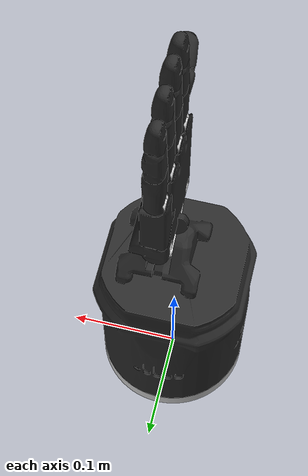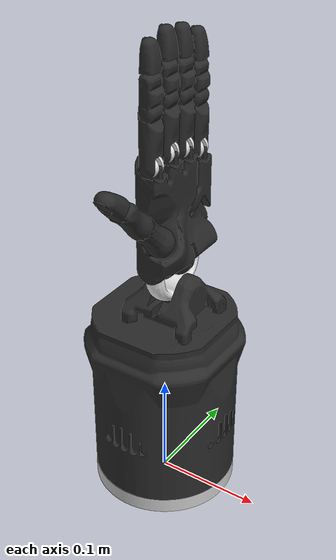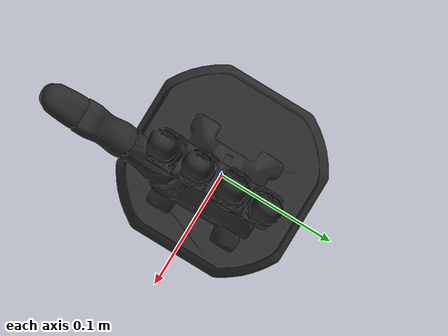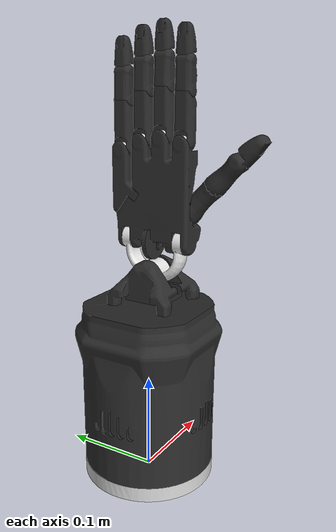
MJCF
<?xml version="1.0" ?>
<mujoco model="left_shadow_hand">
	<compiler meshdir="left_shadow_hand/meshes" texturedir="left_shadow_hand/textures" angle="radian" autolimits="true" balanceinertia="true" boundmass="0.000001" boundinertia="0.000001"/>
	<default>
		<default class="visual">
			<geom contype="0" conaffinity="0"/>
		</default>
		<default class="collision">
			<geom rgba="1.0 0.0 0.0 0.0"/>
		</default>
	</default>
	<asset>
		<mesh name="forearm_0" file="stl/forearm_0.stl" scale="1.0 1.0 1.0"/>
		<mesh name="forearm_1" file="stl/forearm_1.stl" scale="1.0 1.0 1.0"/>
		<mesh name="forearm_collision" file="stl/forearm_collision.stl" scale="1.0 1.0 1.0"/>
		<mesh name="wrist" file="stl/wrist.stl" scale="1.0 1.0 1.0"/>
		<mesh name="palm" file="stl/palm.stl" scale="1.0 1.0 1.0"/>
		<mesh name="f_knuckle" file="stl/f_knuckle.stl" scale="1.0 1.0 1.0"/>
		<mesh name="f_proximal" file="stl/f_proximal.stl" scale="1.0 1.0 1.0"/>
		<mesh name="f_middle" file="stl/f_middle.stl" scale="1.0 1.0 1.0"/>
		<mesh name="f_distal_pst" file="stl/f_distal_pst.stl" scale="1.0 1.0 1.0"/>
		<mesh name="lf_metacarpal" file="stl/lf_metacarpal.stl" scale="1.0 1.0 1.0"/>
		<mesh name="th_proximal" file="stl/th_proximal.stl" scale="1.0 1.0 1.0"/>
		<mesh name="th_middle" file="stl/th_middle.stl" scale="1.0 1.0 1.0"/>
		<mesh name="th_distal_pst" file="stl/th_distal_pst.stl" scale="1.0 1.0 1.0"/>
		<material name="gray" rgba="0.8084800243377686 0.8084800243377686 0.8084800243377686 1.0" emission="0.0" specular="0.0"/>
		<material name="black" rgba="0.16355000436306 0.16355000436306 0.16355000436306 1.0" emission="0.0" specular="0.5"/>
		<material name="metallic" rgba="0.8999999761581421 0.8999999761581421 0.8999999761581421 1.0" emission="0.0" specular="0.0"/>
	</asset>
	<worldbody>
		<body name="left_shadow_hand" pos="0.0 0.0 0.0" quat="1.0 0.0 0.0 0.0">
			<body name="lh_forearm" pos="0.0 0.0 0.0" quat="1.0 0.0 0.0 0.0">
				<geom name="Geom_0" type="mesh" pos="-0.0006274281768128276 2.5023158741532825e-05 0.006174841895699501" quat="0.006112334318459034 0.7070778608322144 -0.006098461803048849 0.707082986831665" mesh="forearm_0" material="gray" class="visual"/>
				<geom name="Geom_1" type="mesh" pos="0.0008932988857850432 4.971852831658907e-07 0.10642138868570328" quat="0.7048231363296509 0.014883364550769329 0.01477573812007904 0.709073007106781" mesh="forearm_1" material="black" class="visual"/>
				<geom name="Geom_2" type="mesh" pos="-2.3000312765475428e-08 -2.1648977721611118e-08 0.09274562448263168" quat="1.0 0.0 0.0 0.0" mesh="forearm_collision" class="collision"/>
				<geom name="Geom_3" type="box" pos="0.009999999776482582 0.0 0.1809999942779541" quat="0.38018807768821716 0.9249091744422913 0.0 0.0" size="0.03500000014901161 0.03500000014901161 0.03500000014901161" class="collision"/>
				<body name="lh_wrist" pos="0.009999999776482582 0.0 0.2130099982023239" quat="0.7071067690849304 0.0 0.0 0.7071067690849304">
					<inertial mass="0.10000000149011612" pos="0.0 0.0 0.028999999165534973" quat="0.5 0.5 0.5 0.5" diaginertia="6.399999983841553e-05 4.3799998820759356e-05 3.5000000934815034e-05"/>
					<geom name="Geom_4" type="mesh" pos="-0.002649368019774556 2.261926420032978e-05 0.016064314171671867" quat="0.4955274760723114 0.5043715834617615 0.5036556124687195 0.49637970328330994" mesh="wrist" material="metallic" class="visual"/>
					<geom name="Geom_5" type="cylinder" pos="0.0 0.0 0.0" quat="0.4999980032444 0.5 0.5 -0.5000020265579224" size="0.013500000350177288 0.014999999664723873 0.0" class="collision"/>
					<geom name="Geom_6" type="cylinder" pos="0.026000000536441803 0.0 0.03400000184774399" quat="0.7071067690849304 0.0 0.7071067690849304 0.0" size="0.010999999940395355 0.004999999888241291 0.0" class="collision"/>
					<geom name="Geom_7" type="cylinder" pos="-0.03099999949336052 0.0 0.03400000184774399" quat="0.7071067690849304 0.0 0.7071067690849304 0.0" size="0.010999999940395355 0.004999999888241291 0.0" class="collision"/>
					<geom name="Geom_8" type="box" pos="0.020999999716877937 0.0 0.010999999940395355" quat="-0.9238792657852173 0.0 0.3826841115951538 0.0" size="0.013500000350177288 0.008999999612569809 0.004999999888241291" class="collision"/>
					<geom name="Geom_9" type="box" pos="-0.026000000536441803 0.0 0.009999999776482582" quat="-0.9238792657852173 0.0 -0.3826841115951538 0.0" size="0.013500000350177288 0.008999999612569809 0.004999999888241291" class="collision"/>
					<joint name="lh_WRJ2" type="hinge" pos="0.0 0.0 0.0" range="-0.5235990285873413 0.17453299462795258" axis="0.0 -1.0 0.0"/>
					<body name="lh_palm" pos="0.0 0.0 0.03400000184774399" quat="1.0 0.0 0.0 0.0">
						<inertial mass="0.30000001192092896" pos="0.0 0.0 0.03500000014901161" quat="0.7071067690849304 0.0 0.0 0.7071067690849304" diaginertia="0.0005287000094540417 0.0003580999909900129 0.00019099999917671084"/>
						<geom name="Geom_10" type="mesh" pos="-0.005374445114284754 -0.0022442906629294157 0.0320129431784153" quat="0.6922619938850403 -0.10281900316476822 -0.04589544236660004 0.7128079533576965" mesh="palm" material="black" class="visual"/>
						<geom name="Geom_11" type="box" pos="-0.010999999940395355 0.008500000461935997 0.03799999877810478" quat="1.0 0.0 0.0 0.0" size="0.03099999949336052 0.0035000001080334187 0.04899999871850014" class="collision"/>
						<geom name="Geom_12" type="box" pos="0.0020000000949949026 -0.0035000001080334187 0.03799999877810478" quat="1.0 0.0 0.0 0.0" size="0.017999999225139618 0.008500000461935997 0.04899999871850014" class="collision"/>
						<geom name="Geom_13" type="box" pos="-0.028999999165534973 -0.0035000001080334187 0.0820000022649765" quat="1.0 0.0 0.0 0.0" size="0.013000000268220901 0.008500000461935997 0.004999999888241291" class="collision"/>
						<geom name="Geom_14" type="box" pos="-0.026499999687075615 -0.0010000000474974513 0.07000000029802322" quat="0.9872407913208008 0.0990544781088829 0.012446697801351547 -0.12405197322368622" size="0.013000000268220901 0.007000000216066837 0.008999999612569809" class="collision"/>
						<geom name="Geom_15" type="box" pos="-0.03150000050663948 -0.008500000461935997 0.0010000000474974513" quat="1.0 0.0 0.0 0.0" size="0.010499999858438969 0.013500000350177288 0.01119999960064888" class="collision"/>
						<geom name="Geom_16" type="box" pos="-0.012500000186264515 -0.014999999664723873 0.004000000189989805" quat="-0.9713379144668579 0.0 0.0 -0.23770296573638916" size="0.010999999940395355 0.0024999999441206455 0.014999999664723873" class="collision"/>
						<geom name="Geom_17" type="box" pos="-0.010999999940395355 0.0 0.08900000154972076" quat="1.0 0.0 0.0 0.0" size="0.008999999612569809 0.012000000104308128 0.0020000000949949026" class="collision"/>
						<geom name="Geom_18" type="box" pos="0.029999999329447746 0.0 0.008999999612569809" quat="1.0 0.0 0.0 0.0" size="0.009999999776482582 0.012000000104308128 0.019999999552965164" class="collision"/>
						<joint name="lh_WRJ1" type="hinge" pos="0.0 0.0 0.0" range="-0.6981319785118103 0.4886919856071472" axis="1.0 0.0 0.0"/>
						<body name="lh_mfknuckle" pos="-0.010999999940395355 0.0 0.0989999994635582" quat="1.0 0.0 0.0 0.0">
							<inertial mass="0.00800000037997961" pos="0.0 0.0 0.0" quat="0.5 0.5 -0.5 0.5" diaginertia="3.199999980552093e-07 2.6000000730164174e-07 2.6000000730164174e-07"/>
							<geom name="Geom_27" type="mesh" pos="-8.015944331418723e-06 0.0002838333311956376 0.00031411449890583754" quat="0.971768319606781 0.23584166169166565 0.0022045928053557873 -0.006343154236674309" mesh="f_knuckle" material="metallic" class="visual"/>
							<geom name="Geom_28" type="cylinder" pos="0.0 0.0 0.0" quat="0.7071067690849304 0.0 0.7071067690849304 0.0" size="0.008999999612569809 0.008999999612569809 0.0" class="collision"/>
							<joint name="lh_MFJ4" type="hinge" pos="0.0 0.0 0.0" range="-0.34906598925590515 0.34906598925590515" axis="0.0 1.0 0.0"/>
							<body name="lh_mfproximal" pos="0.0 0.0 0.0" quat="1.0 0.0 0.0 0.0">
								<inertial mass="0.029999999329447746" pos="0.0 0.0 0.02250000089406967" quat="0.7071067690849304 0.0 0.0 0.7071067690849304" diaginertia="9.999999747378752e-06 9.800000043469481e-06 1.7999999499807018e-06"/>
								<geom name="Geom_29" type="mesh" pos="1.2104673032808932e-06 9.761753062775824e-06 0.02288065291941166" quat="0.7071643471717834 -0.004207220859825611 0.0042030117474496365 0.7070241570472717" mesh="f_proximal" material="black" class="visual"/>
								<geom name="Geom_30" type="capsule" pos="0.0 0.0 0.02500000037252903" quat="1.0 0.0 0.0 0.0" size="0.008999999612569809 0.019999999552965164 0.0" class="collision"/>
								<joint name="lh_MFJ3" type="hinge" pos="0.0 0.0 0.0" range="-0.26179900765419006 1.5707999467849731" axis="1.0 0.0 0.0"/>
								<body name="lh_mfmiddle" pos="0.0 0.0 0.04500000178813934" quat="1.0 0.0 0.0 0.0">
									<inertial mass="0.017000000923871994" pos="0.0 0.0 0.012500000186264515" quat="0.7071067690849304 0.0 0.0 0.7071067690849304" diaginertia="2.7000000955013093e-06 2.6000000161729986e-06 8.700000080352766e-07"/>
									<geom name="Geom_31" type="mesh" pos="-2.7197406780032907e-06 -3.219283462385647e-05 0.011511409655213356" quat="0.7071067690849304 8.541106944903731e-05 -9.612595022190362e-05 0.7071067690849304" mesh="f_middle" material="black" class="visual"/>
									<geom name="Geom_32" type="capsule" pos="0.0 0.0 0.012500000186264515" quat="1.0 0.0 0.0 0.0" size="0.008999999612569809 0.012500000186264515 0.0" class="collision"/>
									<joint name="lh_MFJ2" type="hinge" pos="0.0 0.0 0.0" range="0.0 1.5707999467849731" axis="1.0 0.0 0.0"/>
									<body name="lh_mfdistal" pos="0.0 0.0 0.02500000037252903" quat="1.0 0.0 0.0 0.0">
										<inertial mass="0.013000000268220901" pos="0.0 0.0 0.013076899573206902" quat="0.7071067690849304 0.0 0.0 0.7071067690849304" diaginertia="1.2809199461116805e-06 1.1209200465600588e-06 5.300000225361146e-07"/>
										<geom name="Geom_33" type="mesh" pos="-2.3984350264072418e-05 0.0004207325691822916 0.01764647476375103" quat="0.703035831451416 -0.0009495581034570932 0.0009524950874038041 0.7111531496047974" mesh="f_distal_pst" material="black" class="visual"/>
										<geom name="Geom_34" type="mesh" pos="-2.3984350264072418e-05 0.0004207325691822916 0.01764647476375103" quat="0.703035831451416 -0.0009495581034570932 0.0009524950874038041 0.7111531496047974" mesh="f_distal_pst" class="collision"/>
										<joint name="lh_MFJ1" type="hinge" pos="0.0 0.0 0.0" range="0.0 1.5707999467849731" axis="1.0 0.0 0.0"/>
									</body>
								</body>
							</body>
						</body>
						<body name="lh_rfknuckle" pos="0.010999999940395355 0.0 0.0949999988079071" quat="1.0 0.0 0.0 0.0">
							<inertial mass="0.00800000037997961" pos="0.0 0.0 0.0" quat="0.5 0.5 -0.5 0.5" diaginertia="3.199999980552093e-07 2.6000000730164174e-07 2.6000000730164174e-07"/>
							<geom name="Geom_35" type="mesh" pos="-8.015944331418723e-06 0.0002838333311956376 0.00031411449890583754" quat="0.971768319606781 0.23584166169166565 0.0022045928053557873 -0.006343154236674309" mesh="f_knuckle" material="metallic" class="visual"/>
							<geom name="Geom_36" type="cylinder" pos="0.0 0.0 0.0" quat="0.7071067690849304 0.0 0.7071067690849304 0.0" size="0.008999999612569809 0.008999999612569809 0.0" class="collision"/>
							<joint name="lh_RFJ4" type="hinge" pos="0.0 0.0 0.0" range="-0.34906598925590515 0.34906598925590515" axis="0.0 -1.0 0.0"/>
							<body name="lh_rfproximal" pos="0.0 0.0 0.0" quat="1.0 0.0 0.0 0.0">
								<inertial mass="0.029999999329447746" pos="0.0 0.0 0.02250000089406967" quat="0.7071067690849304 0.0 0.0 0.7071067690849304" diaginertia="9.999999747378752e-06 9.800000043469481e-06 1.7999999499807018e-06"/>
								<geom name="Geom_37" type="mesh" pos="1.2104673032808932e-06 9.761753062775824e-06 0.02288065291941166" quat="0.7071643471717834 -0.004207220859825611 0.0042030117474496365 0.7070241570472717" mesh="f_proximal" material="black" class="visual"/>
								<geom name="Geom_38" type="capsule" pos="0.0 0.0 0.02500000037252903" quat="1.0 0.0 0.0 0.0" size="0.008999999612569809 0.019999999552965164 0.0" class="collision"/>
								<joint name="lh_RFJ3" type="hinge" pos="0.0 0.0 0.0" range="-0.26179900765419006 1.5707999467849731" axis="1.0 0.0 0.0"/>
								<body name="lh_rfmiddle" pos="0.0 0.0 0.04500000178813934" quat="1.0 0.0 0.0 0.0">
									<inertial mass="0.017000000923871994" pos="0.0 0.0 0.012500000186264515" quat="0.7071067690849304 0.0 0.0 0.7071067690849304" diaginertia="2.7000000955013093e-06 2.6000000161729986e-06 8.700000080352766e-07"/>
									<geom name="Geom_39" type="mesh" pos="-2.7197406780032907e-06 -3.219283462385647e-05 0.011511409655213356" quat="0.7071067690849304 8.541106944903731e-05 -9.612595022190362e-05 0.7071067690849304" mesh="f_middle" material="black" class="visual"/>
									<geom name="Geom_40" type="capsule" pos="0.0 0.0 0.012500000186264515" quat="1.0 0.0 0.0 0.0" size="0.008999999612569809 0.012500000186264515 0.0" class="collision"/>
									<joint name="lh_RFJ2" type="hinge" pos="0.0 0.0 0.0" range="0.0 1.5707999467849731" axis="1.0 0.0 0.0"/>
									<body name="lh_rfdistal" pos="0.0 0.0 0.02500000037252903" quat="1.0 0.0 0.0 0.0">
										<inertial mass="0.013000000268220901" pos="0.0 0.0 0.013076899573206902" quat="0.7071067690849304 0.0 0.0 0.7071067690849304" diaginertia="1.2809199461116805e-06 1.1209200465600588e-06 5.300000225361146e-07"/>
										<geom name="Geom_41" type="mesh" pos="-2.3984350264072418e-05 0.0004207325691822916 0.01764647476375103" quat="0.703035831451416 -0.0009495581034570932 0.0009524950874038041 0.7111531496047974" mesh="f_distal_pst" material="black" class="visual"/>
										<geom name="Geom_42" type="mesh" pos="-2.3984350264072418e-05 0.0004207325691822916 0.01764647476375103" quat="0.703035831451416 -0.0009495581034570932 0.0009524950874038041 0.7111531496047974" mesh="f_distal_pst" class="collision"/>
										<joint name="lh_RFJ1" type="hinge" pos="0.0 0.0 0.0" range="0.0 1.5707999467849731" axis="1.0 0.0 0.0"/>
									</body>
								</body>
							</body>
						</body>
						<body name="lh_lfmetacarpal" pos="0.032999999821186066 0.0 0.02071000076830387" quat="1.0 0.0 0.0 0.0">
							<inertial mass="0.029999999329447746" pos="0.0 0.0 0.03999999910593033" quat="0.7071067690849304 0.0 0.0 0.7071067690849304" diaginertia="1.6379999578930438e-05 1.4500000361294951e-05 4.271999841876095e-06"/>
							<geom name="Geom_43" type="mesh" pos="-0.002477748552337289 0.0006623357185162604 0.03647977486252785" quat="0.6964011788368225 0.06640015542507172 0.09600429236888885 0.7080957889556885" mesh="lf_metacarpal" material="black" class="visual"/>
							<geom name="Geom_44" type="box" pos="-0.0020000000949949026 0.0 0.032999999821186066" quat="1.0 0.0 0.0 0.0" size="0.010999999940395355 0.012000000104308128 0.02500000037252903" class="collision"/>
							<joint name="lh_LFJ5" type="hinge" pos="0.0 0.0 0.0" range="0.0 0.785398006439209" axis="0.5735761523246765 0.0 -0.8191522359848022"/>
							<body name="lh_lfknuckle" pos="0.0 0.0 0.06578999757766724" quat="1.0 0.0 0.0 0.0">
								<inertial mass="0.00800000037997961" pos="0.0 0.0 0.0" quat="0.5 0.5 -0.5 0.5" diaginertia="3.199999980552093e-07 2.6000000730164174e-07 2.6000000730164174e-07"/>
								<geom name="Geom_45" type="mesh" pos="-8.015944331418723e-06 0.0002838333311956376 0.00031411449890583754" quat="0.971768319606781 0.23584166169166565 0.0022045928053557873 -0.006343154236674309" mesh="f_knuckle" material="metallic" class="visual"/>
								<geom name="Geom_46" type="cylinder" pos="0.0 0.0 0.0" quat="0.7071067690849304 0.0 0.7071067690849304 0.0" size="0.008999999612569809 0.008999999612569809 0.0" class="collision"/>
								<joint name="lh_LFJ4" type="hinge" pos="0.0 0.0 0.0" range="-0.34906598925590515 0.34906598925590515" axis="0.0 -1.0 0.0"/>
								<body name="lh_lfproximal" pos="0.0 0.0 0.0" quat="1.0 0.0 0.0 0.0">
									<inertial mass="0.029999999329447746" pos="0.0 0.0 0.02250000089406967" quat="0.7071067690849304 0.0 0.0 0.7071067690849304" diaginertia="9.999999747378752e-06 9.800000043469481e-06 1.7999999499807018e-06"/>
									<geom name="Geom_47" type="mesh" pos="1.2104673032808932e-06 9.761753062775824e-06 0.02288065291941166" quat="0.7071643471717834 -0.004207220859825611 0.0042030117474496365 0.7070241570472717" mesh="f_proximal" material="black" class="visual"/>
									<geom name="Geom_48" type="capsule" pos="0.0 0.0 0.02500000037252903" quat="1.0 0.0 0.0 0.0" size="0.008999999612569809 0.019999999552965164 0.0" class="collision"/>
									<joint name="lh_LFJ3" type="hinge" pos="0.0 0.0 0.0" range="-0.26179900765419006 1.5707999467849731" axis="1.0 0.0 0.0"/>
									<body name="lh_lfmiddle" pos="0.0 0.0 0.04500000178813934" quat="1.0 0.0 0.0 0.0">
										<inertial mass="0.017000000923871994" pos="0.0 0.0 0.012500000186264515" quat="0.7071067690849304 0.0 0.0 0.7071067690849304" diaginertia="2.7000000955013093e-06 2.6000000161729986e-06 8.700000080352766e-07"/>
										<geom name="Geom_49" type="mesh" pos="-2.7197406780032907e-06 -3.219283462385647e-05 0.011511409655213356" quat="0.7071067690849304 8.541106944903731e-05 -9.612595022190362e-05 0.7071067690849304" mesh="f_middle" material="black" class="visual"/>
										<geom name="Geom_50" type="capsule" pos="0.0 0.0 0.012500000186264515" quat="1.0 0.0 0.0 0.0" size="0.008999999612569809 0.012500000186264515 0.0" class="collision"/>
										<joint name="lh_LFJ2" type="hinge" pos="0.0 0.0 0.0" range="0.0 1.5707999467849731" axis="1.0 0.0 0.0"/>
										<body name="lh_lfdistal" pos="0.0 0.0 0.02500000037252903" quat="1.0 0.0 0.0 0.0">
											<inertial mass="0.013000000268220901" pos="0.0 0.0 0.013076899573206902" quat="0.7071067690849304 0.0 0.0 0.7071067690849304" diaginertia="1.2809199461116805e-06 1.1209200465600588e-06 5.300000225361146e-07"/>
											<geom name="Geom_51" type="mesh" pos="-2.3984350264072418e-05 0.0004207325691822916 0.01764647476375103" quat="0.703035831451416 -0.0009495581034570932 0.0009524950874038041 0.7111531496047974" mesh="f_distal_pst" material="black" class="visual"/>
											<geom name="Geom_52" type="mesh" pos="-2.3984350264072418e-05 0.0004207325691822916 0.01764647476375103" quat="0.703035831451416 -0.0009495581034570932 0.0009524950874038041 0.7111531496047974" mesh="f_distal_pst" class="collision"/>
											<joint name="lh_LFJ1" type="hinge" pos="0.0 0.0 0.0" range="0.0 1.5707999467849731" axis="1.0 0.0 0.0"/>
										</body>
									</body>
								</body>
							</body>
						</body>
						<body name="lh_thbase" pos="-0.03400000184774399 -0.008580000139772892 0.028999999165534973" quat="0.0 -0.3826828896999359 0.0 0.9238797426223755">
							<inertial mass="0.009999999776482582" pos="0.0 0.0 0.0" quat="1.0 0.0 0.0 0.0" diaginertia="1.5999999902760464e-07 1.5999999902760464e-07 1.5999999902760464e-07"/>
							<geom name="Geom_53" type="sphere" pos="0.0 0.0 0.0" quat="1.0 0.0 0.0 0.0" size="0.013000000268220901 0.0 0.0" class="collision"/>
							<joint name="lh_THJ5" type="hinge" pos="0.0 0.0 0.0" range="-1.0471999645233154 1.0471999645233154" axis="0.0 0.0 1.0"/>
							<body name="lh_thproximal" pos="0.0 0.0 0.0" quat="1.0 0.0 0.0 0.0">
								<inertial mass="0.03999999910593033" pos="0.0 0.0 0.01899999938905239" quat="1.0 0.0 0.0 0.0" diaginertia="1.359999987471383e-05 1.359999987471383e-05 3.130000095552532e-06"/>
								<geom name="Geom_54" type="mesh" pos="-6.37889388599433e-06 -2.603128450573422e-05 0.01671529933810234" quat="0.981552004814148 -0.00010685295274015516 0.0005376083427108824 0.19119460880756378" mesh="th_proximal" material="black" class="visual"/>
								<geom name="Geom_55" type="capsule" pos="0.0 0.0 0.019999999552965164" quat="1.0 0.0 0.0 0.0" size="0.010499999858438969 0.008999999612569809 0.0" class="collision"/>
								<joint name="lh_THJ4" type="hinge" pos="0.0 0.0 0.0" range="0.0 1.2217299938201904" axis="-1.0 0.0 0.0"/>
								<body name="lh_thhub" pos="0.0 0.0 0.03799999877810478" quat="1.0 0.0 0.0 0.0">
									<inertial mass="0.004999999888241291" pos="0.0 0.0 0.0" quat="1.0 0.0 0.0 0.0" diaginertia="9.999999974752427e-07 9.999999974752427e-07 3.000000106112566e-07"/>
									<geom name="Geom_56" type="sphere" pos="0.0 0.0 0.0" quat="1.0 0.0 0.0 0.0" size="0.010999999940395355 0.0 0.0" class="collision"/>
									<joint name="lh_THJ3" type="hinge" pos="0.0 0.0 0.0" range="-0.20943999290466309 0.20943999290466309" axis="-1.0 0.0 0.0"/>
									<body name="lh_thmiddle" pos="0.0 0.0 0.0" quat="1.0 0.0 0.0 0.0">
										<inertial mass="0.019999999552965164" pos="0.0 0.0 0.01600000075995922" quat="1.0 0.0 0.0 0.0" diaginertia="5.100000180391362e-06 5.100000180391362e-06 1.2100000503778574e-06"/>
										<geom name="Geom_57" type="mesh" pos="7.479629857698455e-05 -4.5069777115713805e-05 0.015348398126661777" quat="0.9999998807907104 0.0 -0.0004517743072938174 0.0" mesh="th_middle" material="black" class="visual"/>
										<geom name="Geom_58" type="capsule" pos="0.0 0.0 0.012000000104308128" quat="1.0 0.0 0.0 0.0" size="0.008999999612569809 0.008999999612569809 0.0" class="collision"/>
										<geom name="Geom_59" type="sphere" pos="0.0 0.0 0.029999999329447746" quat="1.0 0.0 0.0 0.0" size="0.009999999776482582 0.0 0.0" class="collision"/>
										<joint name="lh_THJ2" type="hinge" pos="0.0 0.0 0.0" range="-0.6981319785118103 0.6981319785118103" axis="0.0 -1.0 0.0"/>
										<body name="lh_thdistal" pos="0.0 0.0 0.03200000151991844" quat="0.7071067690849304 0.0 0.0 -0.7071067690849304">
											<inertial mass="0.017000000923871994" pos="0.0 0.0 0.01455879956483841" quat="0.7071067690849304 0.0 0.0 0.7071067690849304" diaginertia="2.377940063524875e-06 2.277939984196564e-06 9.999999974752427e-07"/>
											<geom name="Geom_60" type="mesh" pos="-8.254509680227784e-07 0.0008025187416933477 0.019553372636437416" quat="0.7071506977081299 -0.0011598747223615646 0.001084130140952766 0.7070610523223877" mesh="th_distal_pst" material="black" class="visual"/>
											<geom name="Geom_61" type="mesh" pos="-8.254509680227784e-07 0.0008025187416933477 0.019553372636437416" quat="0.7071506977081299 -0.0011598747223615646 0.001084130140952766 0.7070610523223877" mesh="th_distal_pst" class="collision"/>
											<joint name="lh_THJ1" type="hinge" pos="0.0 0.0 0.0" range="-0.26179900765419006 1.5707999467849731" axis="1.0 0.0 0.0"/>
										</body>
									</body>
								</body>
							</body>
						</body>
						<body name="lh_ffknuckle" pos="-0.032999999821186066 0.0 0.0949999988079071" quat="1.0 0.0 0.0 0.0">
							<inertial mass="0.00800000037997961" pos="0.0 0.0 0.0" quat="0.5 0.5 -0.5 0.5" diaginertia="3.199999980552093e-07 2.6000000730164174e-07 2.6000000730164174e-07"/>
							<geom name="Geom_19" type="mesh" pos="-8.015944331418723e-06 0.0002838333311956376 0.00031411449890583754" quat="0.971768319606781 0.23584166169166565 0.0022045928053557873 -0.006343154236674309" mesh="f_knuckle" material="metallic" class="visual"/>
							<geom name="Geom_20" type="cylinder" pos="0.0 0.0 0.0" quat="0.7071067690849304 0.0 0.7071067690849304 0.0" size="0.008999999612569809 0.008999999612569809 0.0" class="collision"/>
							<joint name="lh_FFJ4" type="hinge" pos="0.0 0.0 0.0" range="-0.34906598925590515 0.34906598925590515" axis="0.0 1.0 0.0"/>
							<body name="lh_ffproximal" pos="0.0 0.0 0.0" quat="1.0 0.0 0.0 0.0">
								<inertial mass="0.029999999329447746" pos="0.0 0.0 0.02250000089406967" quat="0.7071067690849304 0.0 0.0 0.7071067690849304" diaginertia="9.999999747378752e-06 9.800000043469481e-06 1.7999999499807018e-06"/>
								<geom name="Geom_21" type="mesh" pos="1.2104673032808932e-06 9.761753062775824e-06 0.02288065291941166" quat="0.7071643471717834 -0.004207220859825611 0.0042030117474496365 0.7070241570472717" mesh="f_proximal" material="black" class="visual"/>
								<geom name="Geom_22" type="capsule" pos="0.0 0.0 0.02500000037252903" quat="1.0 0.0 0.0 0.0" size="0.008999999612569809 0.019999999552965164 0.0" class="collision"/>
								<joint name="lh_FFJ3" type="hinge" pos="0.0 0.0 0.0" range="-0.26179900765419006 1.5707999467849731" axis="1.0 0.0 0.0"/>
								<body name="lh_ffmiddle" pos="0.0 0.0 0.04500000178813934" quat="1.0 0.0 0.0 0.0">
									<inertial mass="0.017000000923871994" pos="0.0 0.0 0.012500000186264515" quat="0.7071067690849304 0.0 0.0 0.7071067690849304" diaginertia="2.7000000955013093e-06 2.6000000161729986e-06 8.700000080352766e-07"/>
									<geom name="Geom_23" type="mesh" pos="-2.7197406780032907e-06 -3.219283462385647e-05 0.011511409655213356" quat="0.7071067690849304 8.541106944903731e-05 -9.612595022190362e-05 0.7071067690849304" mesh="f_middle" material="black" class="visual"/>
									<geom name="Geom_24" type="capsule" pos="0.0 0.0 0.012500000186264515" quat="1.0 0.0 0.0 0.0" size="0.008999999612569809 0.012500000186264515 0.0" class="collision"/>
									<joint name="lh_FFJ2" type="hinge" pos="0.0 0.0 0.0" range="0.0 1.5707999467849731" axis="1.0 0.0 0.0"/>
									<body name="lh_ffdistal" pos="0.0 0.0 0.02500000037252903" quat="1.0 0.0 0.0 0.0">
										<inertial mass="0.013000000268220901" pos="0.0 0.0 0.013076899573206902" quat="0.7071067690849304 0.0 0.0 0.7071067690849304" diaginertia="1.2809199461116805e-06 1.1209200465600588e-06 5.300000225361146e-07"/>
										<geom name="Geom_25" type="mesh" pos="-2.3984350264072418e-05 0.0004207325691822916 0.01764647476375103" quat="0.703035831451416 -0.0009495581034570932 0.0009524950874038041 0.7111531496047974" mesh="f_distal_pst" material="black" class="visual"/>
										<geom name="Geom_26" type="mesh" pos="-2.3984350264072418e-05 0.0004207325691822916 0.01764647476375103" quat="0.703035831451416 -0.0009495581034570932 0.0009524950874038041 0.7111531496047974" mesh="f_distal_pst" class="collision"/>
										<joint name="lh_FFJ1" type="hinge" pos="0.0 0.0 0.0" range="0.0 1.5707999467849731" axis="1.0 0.0 0.0"/>
									</body>
								</body>
							</body>
						</body>
					</body>
				</body>
			</body>
		</body>
	</worldbody>
	<equality/>
</mujoco>
